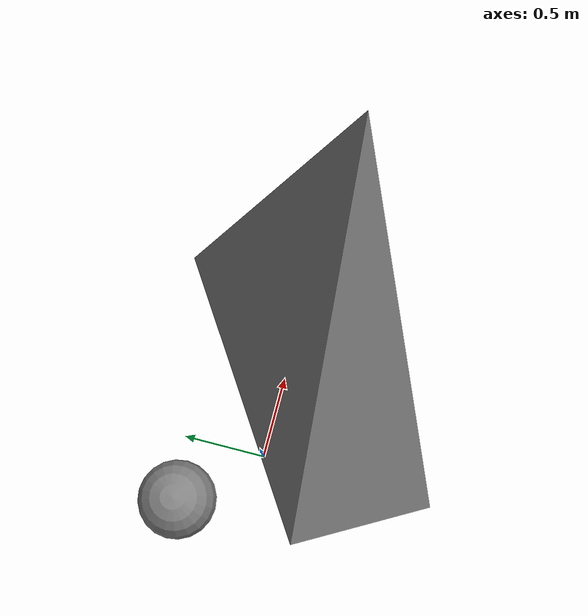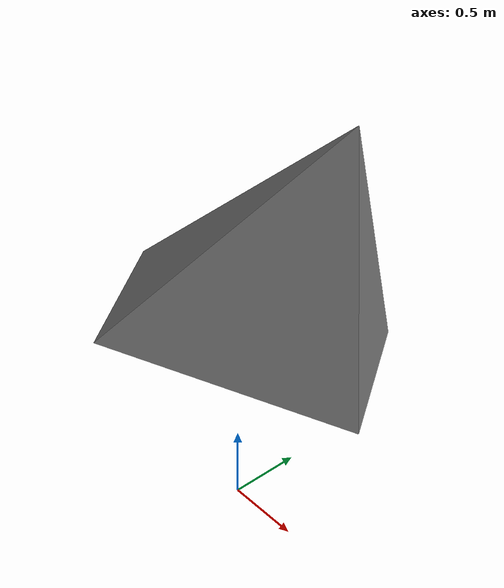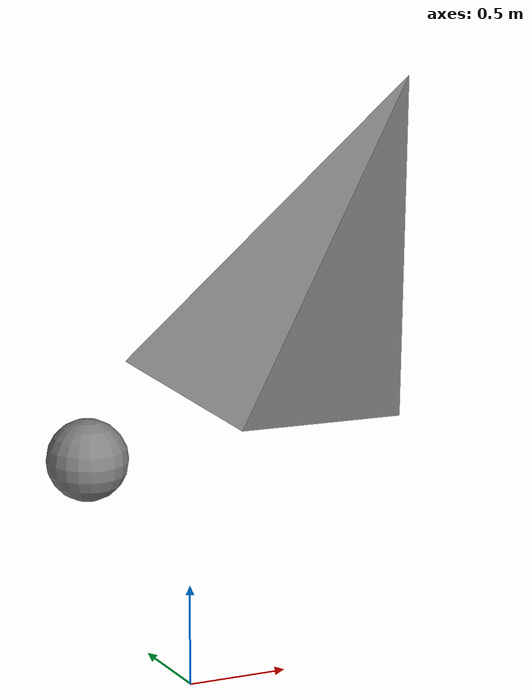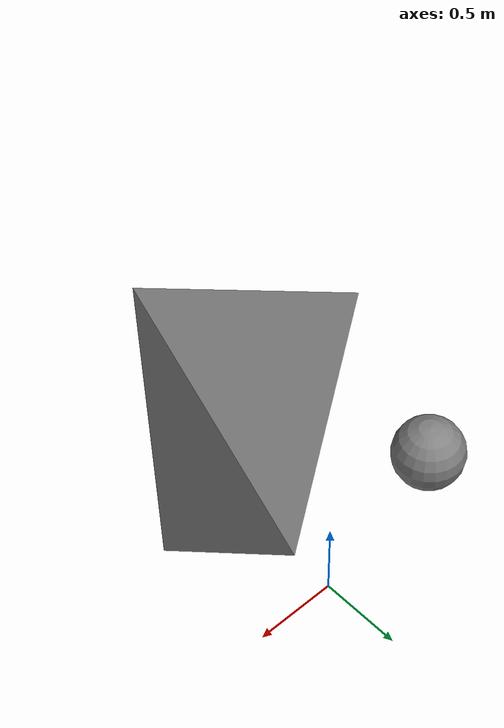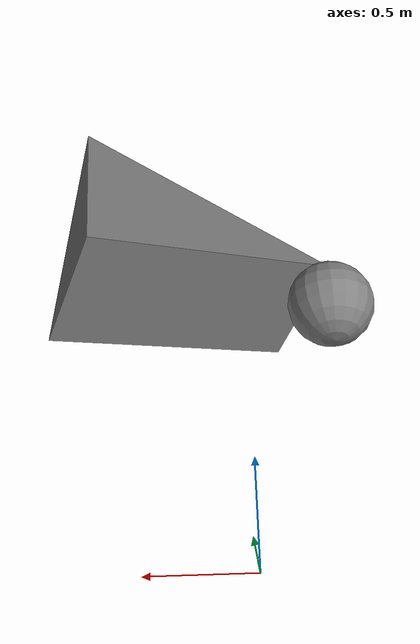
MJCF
<mujoco model="mesh_case">
  <asset>
    <mesh name="pyr" file="pyramid.stl" scale="1.5 1 2"/>
  </asset>
  <worldbody>
    <body name="piece" pos="0 0 1">
      <freejoint/>
      <geom name="pyramid" type="mesh" mesh="pyr" pos="0.3 -0.2 0.5" euler="10 20 30" density="700"/>
      <geom name="ball" type="sphere" size="0.2" pos="-0.4 0.3 0.1" mass="0.9"/>
    </body>
  </worldbody>
</mujoco>
